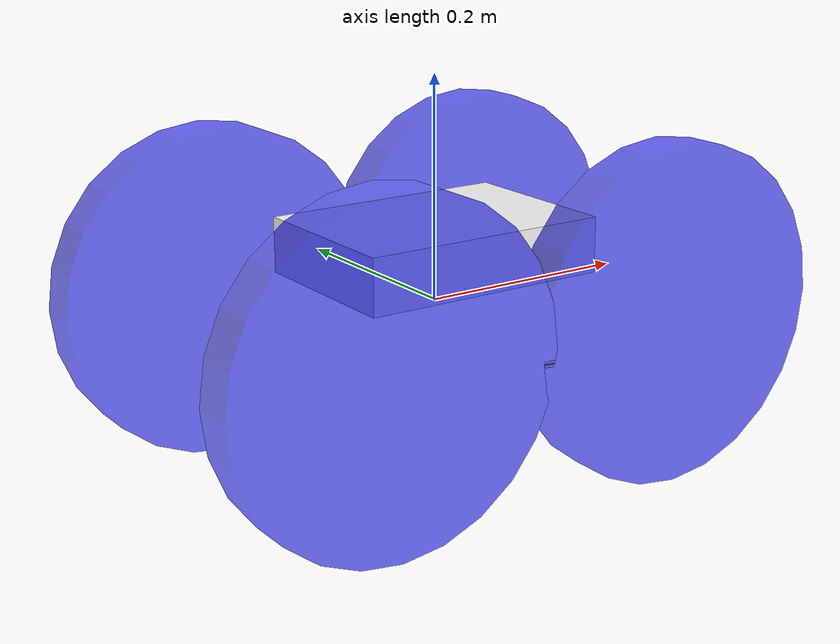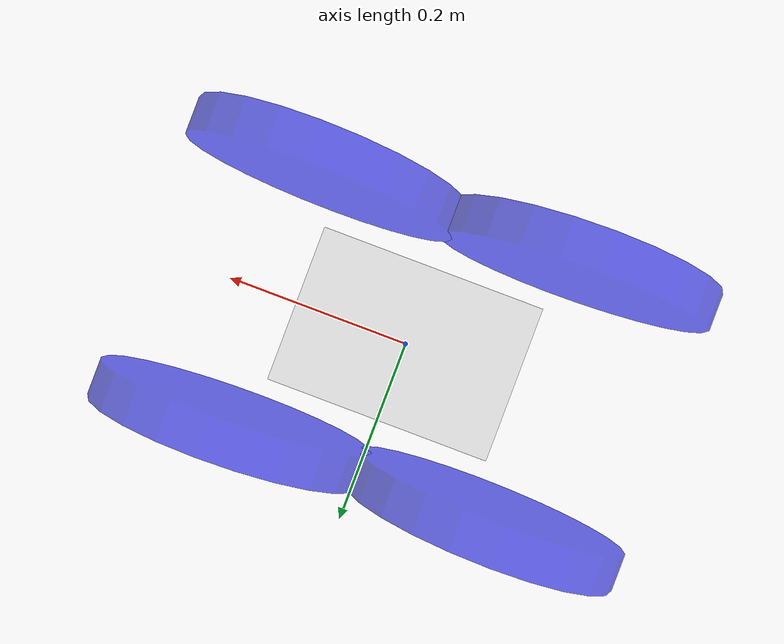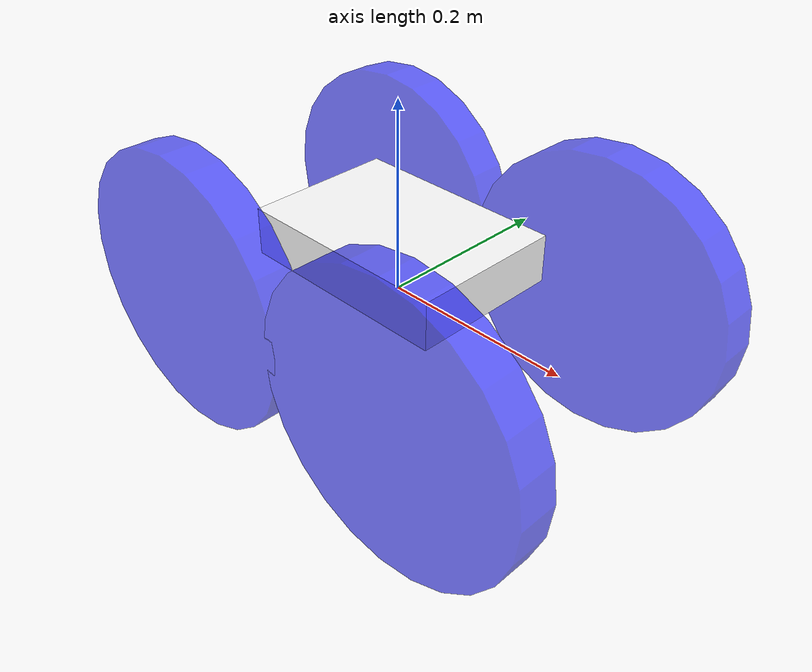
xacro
<?xml version="1.0"?>
<robot xmlns:xacro="http://www.ros.org/wiki/xacro" >

    <xacro:include filename='inertial_macros.xacro'/>
    <xacro:property name="pi" value="3.141592653589793"/>

    <!-- Materials determine-->

    <material name='white'>
        <color rgba = '1 1 1 1'/>
    </material>

    <material name='black'>
        <color rgba = '0 0 0 0'/>
    </material>

    <material name='red'>
        <color rgba = '1 0 0 0.8'/>
    </material>

    <material name='blue'>
        <color rgba = '0 0 1 0.6'/>
    </material>

    <!-- Base link-->
    <link name='base_link'>
    </link>

    <!-- Chassis -->

    <joint name='chassis_joint' type='fixed'>
        <parent link='base_link'/>
        <child link='chassis'/>
        <origin xyz='0 0 0'/>
    </joint>

    <link name='chassis'>
        <visual>
            <origin xyz= '0 0 0.05' rpy='0 0 0'/>
            <geometry>
                <box size= '0.23 0.16 0.05'/>
            </geometry>
            <material name='white'/>
        </visual>
        <collision>
            <origin xyz= '0 0 0.05' rpy='0 0 0'/>
            <geometry>
                <box size= '0.23 0.16 0.05'/>
            </geometry>
        </collision>
        <xacro:inertial_box mass='1.4' x='0.23' y='0.16' z='0.05'>
            <origin xyz= '0 0 0.05' rpy='0 0 0'/>
        </xacro:inertial_box>
    </link>

    <gazebo reference='chassis'>
        <material>Gazebo/White</material>
    </gazebo>

    <!-- Wheels -->

    <!-- ##########################################      RIGHT FRONT       ##########################################-->

    <joint name="right_front_wheel_joint" type='continuous'>
        <parent link='chassis'/>
        <child link='right_front_wheel'/>
        <origin xyz='0.1425 -0.1425 0' rpy='-${pi/2} 0 0'/>
        <axis xyz='0 0 -1'/>
    </joint>

    <link name='right_front_wheel'>
        <visual>
            <geometry>
                <cylinder radius='0.15' length='0.04'/>
            </geometry>
            <material name='blue'/>
        </visual>
        <collision>
            <geometry>
                <sphere radius='0.15'/>
            </geometry>
        </collision>
        <xacro:inertial_cylinder mass='0.05' length='0.04' radius='0.15'>
            <origin xyz= '0 0 0' rpy='0 0 0'/>
        </xacro:inertial_cylinder>
    </link>

    <gazebo reference='right_front_wheel'>
        <material>Gazebo/Blue</material>
    </gazebo>

     <!-- ##########################################      RIGHT REAR       ########################################## -->

    <joint name="right_rear_wheel_joint" type='continuous'>
        <parent link='chassis'/>
        <child link='right_rear_wheel'/>
        <origin xyz = '-0.1425 -0.1425 0' rpy='-${pi/2} 0 0'/>
        <axis xyz='0 0 -1'/>
    </joint>

    <link name='right_rear_wheel'>
       <visual>
            <geometry>
                <cylinder radius='0.15' length='0.04'/>
            </geometry>
            <material name='blue'/>
        </visual>
        <collision>
            <geometry>
                <sphere radius='0.15'/>
            </geometry>
        </collision>
        <xacro:inertial_cylinder mass='0.05' length='0.04' radius='0.15'>
            <origin xyz= '0 0 0' rpy='0 0 0'/>
        </xacro:inertial_cylinder>
    </link>

    <gazebo reference='right_rear_wheel'>
        <material>Gazebo/Blue</material>

    </gazebo>

    <!-- ##########################################      LEFT FRONT       ########################################## -->
    <joint name="left_front_wheel_joint" type='continuous'>
        <parent link='chassis'/>
        <child link='left_front_wheel'/>
        <origin xyz='0.1425 0.1425 0' rpy='${pi/2} 0 0'/>
        <axis xyz='0 0 1'/>
    </joint>

    <link name='left_front_wheel'>
        <visual>
            <geometry>
                <cylinder radius='0.15' length='0.04'/>
            </geometry>
            <material name='blue'/>
        </visual>
        <collision>
            <geometry>
                <sphere radius='0.15'/>
            </geometry>
        </collision>
        <xacro:inertial_cylinder mass='0.05' length='0.04' radius='0.15'>
            <origin xyz= '0 0 0' rpy='0 0 0'/>
        </xacro:inertial_cylinder>
    </link>

    <gazebo reference='left_front_wheel'>
        <material>Gazebo/Blue</material>
    </gazebo>

    <!-- ##########################################      LEFT REAR       ########################################## -->

    <joint name="left_rear_wheel_joint" type='continuous'>
        <parent link='base_link'/>
        <child link='left_rear_wheel'/>
        <origin xyz = '-0.1425 0.1425 0' rpy='${pi/2} 0 0'/>
        <axis xyz='0 0 1'/>
    </joint>

    <link name='left_rear_wheel'>
       <visual>
            <geometry>
                <cylinder radius='0.15' length='0.04'/>
            </geometry>
            <material name='blue'/>
        </visual>
        <collision>
            <geometry>
                <sphere radius='0.15'/>
            </geometry>
        </collision>
        <xacro:inertial_cylinder mass='0.05' length='0.04' radius='0.15'>
            <origin xyz= '0 0 0' rpy='0 0 0'/>
        </xacro:inertial_cylinder>
    </link>

    <gazebo reference='left_rear_wheel'>
        <material>Gazebo/Blue</material>
    </gazebo>

</robot>
